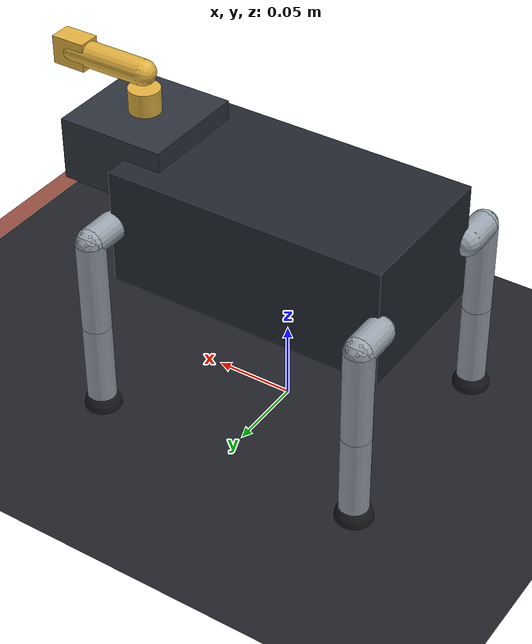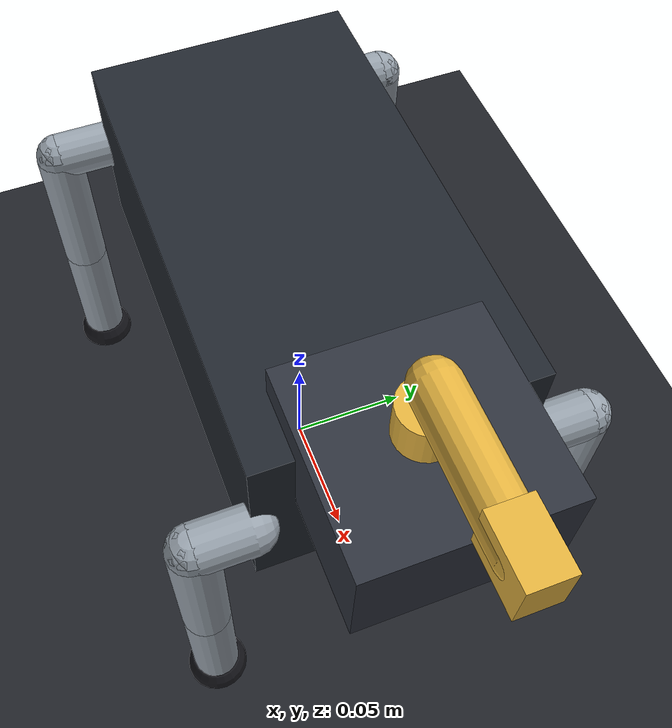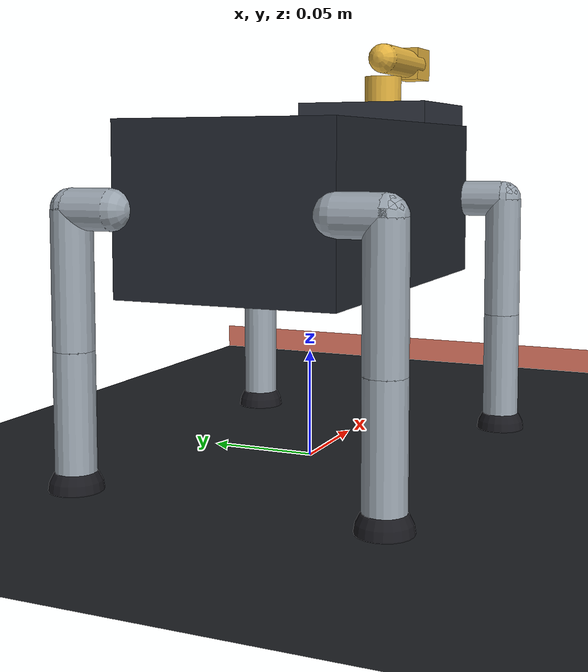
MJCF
<mujoco model="dogzilla_lite_step">
  <compiler angle="radian" autolimits="true"/>
  <option timestep="0.002" gravity="0 0 -9.81" integrator="RK4"/>

  <default>
    <joint damping="0.3" armature="0.01" frictionloss="0.05"/>
    <geom contype="1" conaffinity="1" friction="0.8 0.02 0.01" solref="0.005 1"/>
    <position kp="8" ctrlrange="-2.2 2.2"/>
    <default class="leg">
      <geom type="capsule" size="0.009" rgba="0.6 0.64 0.68 1"/>
    </default>
  </default>

  <asset>
    <texture type="skybox" builtin="gradient" rgb1="0.3 0.3 0.35" rgb2="0.05 0.05 0.08" width="128" height="128"/>
    <texture name="grid" type="2d" builtin="checker" rgb1="0.15 0.16 0.18" rgb2="0.1 0.11 0.13" width="256" height="256"/>
    <material name="grid" texture="grid" texrepeat="8 8" reflectance="0.1"/>
  </asset>

  <worldbody>
    <light directional="true" diffuse="0.8 0.8 0.8" pos="0 0 3" dir="0 0 -1"/>
    <geom name="floor" type="plane" size="5 5 0.1" material="grid"/>
    <!-- Step obstacle: a thin box the robot must step over.
         Height and position are randomized by the env at reset.
         Default: 1.5cm high, placed 0.3m ahead of robot start. -->
    <geom name="step_obstacle" type="box" pos="0.3 0 0.0075" size="0.03 0.5 0.0075" rgba="0.8 0.3 0.2 0.8"/>

    <body name="trunk" pos="0 0 0.12">
      <freejoint name="root"/>
      <inertial pos="0 0 0" mass="0.42" diaginertia="0.0018 0.0035 0.0040"/>
      <geom name="trunk_geom" type="box" size="0.09 0.05 0.0375" rgba="0.13 0.15 0.18 1"/>
      <geom name="head_geom" type="box" pos="0.10 0 0.03" size="0.035 0.035 0.02" rgba="0.18 0.2 0.24 1"/>
      <site name="imu" pos="0 0 0" size="0.005"/>

      <!-- Arm: base(yaw) -> shoulder(pitch) -> gripper(open/close) -->
      <body name="arm_base_link" pos="0.10 0 0.055">
        <joint name="arm_base" type="hinge" axis="0 0 1" range="-1.57 1.57" damping="0.2"/>
        <inertial pos="0 0 0" mass="0.01" diaginertia="1e-5 1e-5 1e-5"/>
        <geom type="cylinder" size="0.01 0.01" rgba="0.89 0.7 0.25 1"/>
        <body name="arm_shoulder_link" pos="0 0 0.02">
          <joint name="arm_shoulder" type="hinge" axis="0 1 0" range="-1.2 1.2" damping="0.2"/>
          <inertial pos="0 0 0" mass="0.01" diaginertia="1e-5 1e-5 1e-5"/>
          <geom type="capsule" size="0.008" fromto="0 0 0 0.05 0 0" rgba="0.89 0.7 0.25 1"/>
          <body name="arm_gripper_link" pos="0.05 0 0">
            <joint name="arm_gripper" type="hinge" axis="1 0 0" range="0 1.2" damping="0.1"/>
            <inertial pos="0 0 0" mass="0.008" diaginertia="1e-6 1e-6 1e-6"/>
            <geom type="box" size="0.011 0.007 0.009" rgba="0.89 0.7 0.25 1"/>
          </body>
        </body>
      </body>

      <!-- Legs: fl, fr, rl, rr -->
      <body name="fl_hip_link" pos="0.09 0.05 0">
        <joint name="fl_hip" type="hinge" axis="1 0 0" range="-0.6 0.6"/>
        <inertial pos="0 0 0" mass="0.012" diaginertia="1e-5 1e-5 1e-5"/>
        <geom class="leg" fromto="0 0 0 0 0.02 0"/>
        <body name="fl_thigh_link" pos="0 0.02 0">
          <joint name="fl_thigh" type="hinge" axis="0 1 0" range="-1.57 1.57"/>
          <inertial pos="0 0 -0.03" mass="0.03" diaginertia="1e-5 1e-5 3e-6"/>
          <geom class="leg" fromto="0 0 0 0 0 -0.06"/>
          <body name="fl_calf_link" pos="0 0 -0.06">
            <joint name="fl_calf" type="hinge" axis="0 1 0" range="-2.2 0.2"/>
            <inertial pos="0 0 -0.03" mass="0.02" diaginertia="6e-6 6e-6 2e-6"/>
            <geom class="leg" fromto="0 0 0 0 0 -0.06"/>
            <geom name="fl_foot" type="sphere" pos="0 0 -0.06" size="0.012" friction="1.0 0.02 0.01" rgba="0.1 0.1 0.12 1"/>
          </body>
        </body>
      </body>

      <body name="fr_hip_link" pos="0.09 -0.05 0">
        <joint name="fr_hip" type="hinge" axis="1 0 0" range="-0.6 0.6"/>
        <inertial pos="0 0 0" mass="0.012" diaginertia="1e-5 1e-5 1e-5"/>
        <geom class="leg" fromto="0 0 0 0 -0.02 0"/>
        <body name="fr_thigh_link" pos="0 -0.02 0">
          <joint name="fr_thigh" type="hinge" axis="0 1 0" range="-1.57 1.57"/>
          <inertial pos="0 0 -0.03" mass="0.03" diaginertia="1e-5 1e-5 3e-6"/>
          <geom class="leg" fromto="0 0 0 0 0 -0.06"/>
          <body name="fr_calf_link" pos="0 0 -0.06">
            <joint name="fr_calf" type="hinge" axis="0 1 0" range="-2.2 0.2"/>
            <inertial pos="0 0 -0.03" mass="0.02" diaginertia="6e-6 6e-6 2e-6"/>
            <geom class="leg" fromto="0 0 0 0 0 -0.06"/>
            <geom name="fr_foot" type="sphere" pos="0 0 -0.06" size="0.012" friction="1.0 0.02 0.01" rgba="0.1 0.1 0.12 1"/>
          </body>
        </body>
      </body>

      <body name="rl_hip_link" pos="-0.09 0.05 0">
        <joint name="rl_hip" type="hinge" axis="1 0 0" range="-0.6 0.6"/>
        <inertial pos="0 0 0" mass="0.012" diaginertia="1e-5 1e-5 1e-5"/>
        <geom class="leg" fromto="0 0 0 0 0.02 0"/>
        <body name="rl_thigh_link" pos="0 0.02 0">
          <joint name="rl_thigh" type="hinge" axis="0 1 0" range="-1.57 1.57"/>
          <inertial pos="0 0 -0.03" mass="0.03" diaginertia="1e-5 1e-5 3e-6"/>
          <geom class="leg" fromto="0 0 0 0 0 -0.06"/>
          <body name="rl_calf_link" pos="0 0 -0.06">
            <joint name="rl_calf" type="hinge" axis="0 1 0" range="-2.2 0.2"/>
            <inertial pos="0 0 -0.03" mass="0.02" diaginertia="6e-6 6e-6 2e-6"/>
            <geom class="leg" fromto="0 0 0 0 0 -0.06"/>
            <geom name="rl_foot" type="sphere" pos="0 0 -0.06" size="0.012" friction="1.0 0.02 0.01" rgba="0.1 0.1 0.12 1"/>
          </body>
        </body>
      </body>

      <body name="rr_hip_link" pos="-0.09 -0.05 0">
        <joint name="rr_hip" type="hinge" axis="1 0 0" range="-0.6 0.6"/>
        <inertial pos="0 0 0" mass="0.012" diaginertia="1e-5 1e-5 1e-5"/>
        <geom class="leg" fromto="0 0 0 0 -0.02 0"/>
        <body name="rr_thigh_link" pos="0 -0.02 0">
          <joint name="rr_thigh" type="hinge" axis="0 1 0" range="-1.57 1.57"/>
          <inertial pos="0 0 -0.03" mass="0.03" diaginertia="1e-5 1e-5 3e-6"/>
          <geom class="leg" fromto="0 0 0 0 0 -0.06"/>
          <body name="rr_calf_link" pos="0 0 -0.06">
            <joint name="rr_calf" type="hinge" axis="0 1 0" range="-2.2 0.2"/>
            <inertial pos="0 0 -0.03" mass="0.02" diaginertia="6e-6 6e-6 2e-6"/>
            <geom class="leg" fromto="0 0 0 0 0 -0.06"/>
            <geom name="rr_foot" type="sphere" pos="0 0 -0.06" size="0.012" friction="1.0 0.02 0.01" rgba="0.1 0.1 0.12 1"/>
          </body>
        </body>
      </body>
    </body>
  </worldbody>

  <sensor>
    <framequat name="trunk_quat" objtype="site" objname="imu"/>
    <gyro name="trunk_gyro" site="imu"/>
    <accelerometer name="trunk_accel" site="imu"/>
    <framepos name="trunk_pos" objtype="site" objname="imu"/>
  </sensor>

  <actuator>
    <position name="fl_hip"    joint="fl_hip"    kp="6"/>
    <position name="fl_thigh"  joint="fl_thigh"  kp="10"/>
    <position name="fl_calf"   joint="fl_calf"   kp="10"/>
    <position name="fr_hip"    joint="fr_hip"    kp="6"/>
    <position name="fr_thigh"  joint="fr_thigh"  kp="10"/>
    <position name="fr_calf"   joint="fr_calf"   kp="10"/>
    <position name="rl_hip"    joint="rl_hip"    kp="6"/>
    <position name="rl_thigh"  joint="rl_thigh"  kp="10"/>
    <position name="rl_calf"   joint="rl_calf"   kp="10"/>
    <position name="rr_hip"    joint="rr_hip"    kp="6"/>
    <position name="rr_thigh"  joint="rr_thigh"  kp="10"/>
    <position name="rr_calf"   joint="rr_calf"   kp="10"/>
    <position name="arm_base"     joint="arm_base"     kp="3"/>
    <position name="arm_shoulder" joint="arm_shoulder" kp="3"/>
    <position name="arm_gripper"  joint="arm_gripper"  kp="2"/>
  </actuator>

  <keyframe>
    <key name="stand"
      qpos="0 0 0.12  1 0 0 0
            0 0 0
            0 0.5 -0.9
            0 0.5 -0.9
            0 0.5 -0.9
            0 0.5 -0.9"/>
  </keyframe>
</mujoco>
